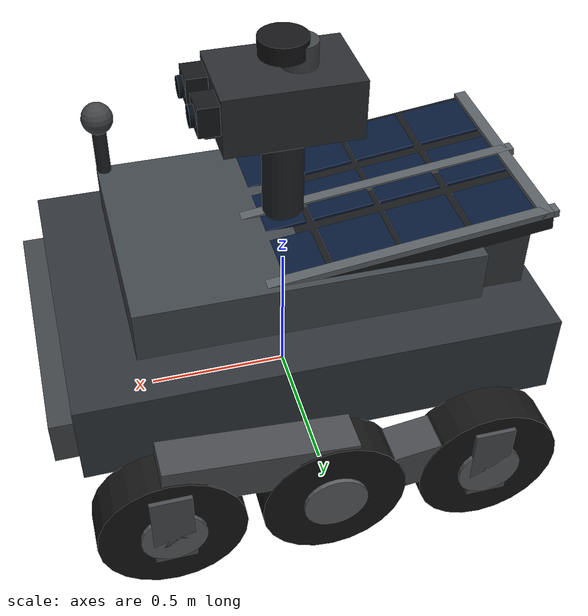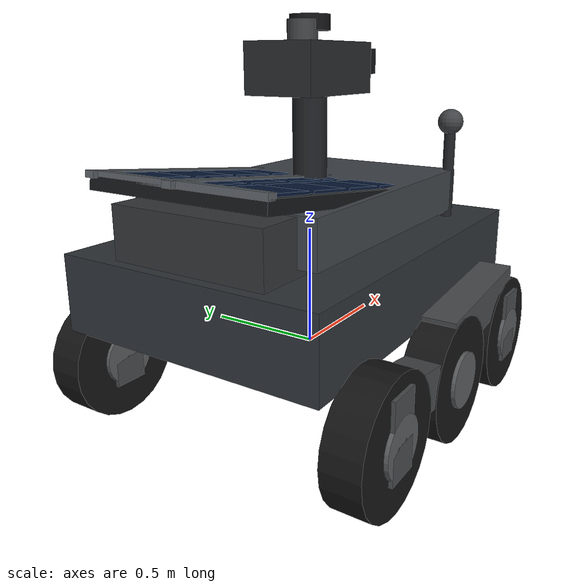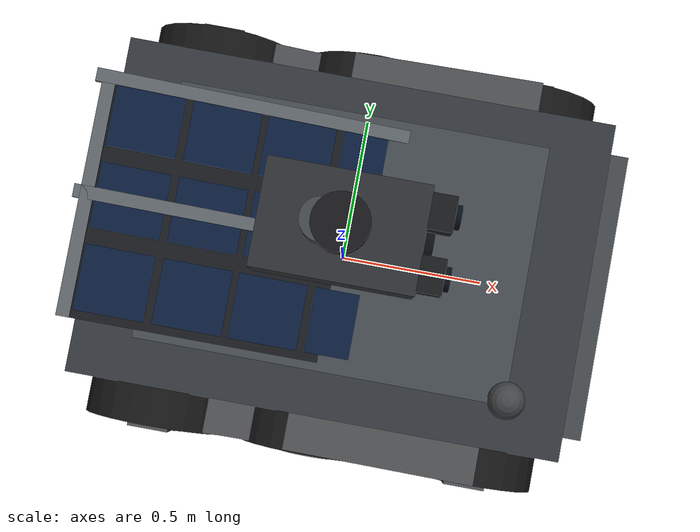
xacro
<?xml version="1.0"?>

<robot name="mars_rover"
       xmlns:xacro="http://www.ros.org/wiki/xacro">

    <xacro:include filename="chassis.xacro"/>
    <xacro:include filename="wheels.xacro"/>
    <xacro:include filename="sensors.xacro"/>
    <xacro:include filename="solar_panel.xacro"/>
    <xacro:include filename="details.xacro"/>

    <!-- Simulated wheel hardware interface -->
    <ros2_control name="RoverDriveSystem" type="system">
        <hardware>
            <plugin>gz_ros2_control/GazeboSimSystem</plugin>
        </hardware>

        <joint name="front_left_wheel_joint">
            <command_interface name="velocity"/>
            <state_interface name="position"/>
            <state_interface name="velocity"/>
        </joint>

        <joint name="middle_left_wheel_joint">
            <command_interface name="velocity"/>
            <state_interface name="position"/>
            <state_interface name="velocity"/>
        </joint>

        <joint name="rear_left_wheel_joint">
            <command_interface name="velocity"/>
            <state_interface name="position"/>
            <state_interface name="velocity"/>
        </joint>

        <joint name="front_right_wheel_joint">
            <command_interface name="velocity"/>
            <state_interface name="position"/>
            <state_interface name="velocity"/>
        </joint>

        <joint name="middle_right_wheel_joint">
            <command_interface name="velocity"/>
            <state_interface name="position"/>
            <state_interface name="velocity"/>
        </joint>

        <joint name="rear_right_wheel_joint">
            <command_interface name="velocity"/>
            <state_interface name="position"/>
            <state_interface name="velocity"/>
        </joint>
    </ros2_control>

    <!-- Gazebo ROS 2 control plugin -->
    <gazebo>
        <plugin filename="gz_ros2_control-system"
                name="gz_ros2_control::GazeboSimROS2ControlPlugin">
            <parameters>$(find rover_gazebo)/config/controllers.yaml</parameters>
        </plugin>
    </gazebo>

</robot>

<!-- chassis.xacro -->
<robot xmlns:xacro="http://www.ros.org/wiki/xacro">

    <!-- Main chassis dimensions -->
    <xacro:property name="chassis_length" value="1.6"/>
    <xacro:property name="chassis_width" value="1.1"/>
    <xacro:property name="chassis_height" value="0.30"/>
    <xacro:property name="chassis_z" value="0.35"/>
    <xacro:property name="chassis_mass" value="20.0"/>

    <!-- Main body -->
    <link name="base_link">

        <visual>
            <origin xyz="0 0 ${chassis_z}"/>
            <geometry>
                <box size="${chassis_length} ${chassis_width} ${chassis_height}"/>
            </geometry>

            <material name="chassis_material">
                <color rgba="0.18 0.20 0.22 1"/>
            </material>
        </visual>

        <collision>
            <origin xyz="0 0 ${chassis_z}"/>
            <geometry>
                <box size="${chassis_length} ${chassis_width} ${chassis_height}"/>
            </geometry>
        </collision>

        <inertial>
            <origin xyz="0 0 ${chassis_z}"/>
            <mass value="${chassis_mass}"/>

            <inertia
                ixx="2.167"
                ixy="0.0"
                ixz="0.0"
                iyy="4.417"
                iyz="0.0"
                izz="6.283"/>
        </inertial>

    </link>

    <!-- Raised central equipment deck -->
    <link name="equipment_deck">

        <visual>
            <origin xyz="0 0 0.12"/>
            <geometry>
                <box size="1.15 0.80 0.18"/>
            </geometry>

            <material name="deck_material">
                <color rgba="0.25 0.27 0.29 1"/>
            </material>
        </visual>

        <collision>
            <origin xyz="0 0 0.12"/>
            <geometry>
                <box size="1.15 0.80 0.18"/>
            </geometry>
        </collision>

        <inertial>
            <origin xyz="0 0 0.12"/>
            <mass value="4.0"/>

            <inertia
                ixx="0.2"
                ixy="0.0"
                ixz="0.0"
                iyy="0.2"
                iyz="0.0"
                izz="0.2"/>
        </inertial>

    </link>

    <joint name="equipment_deck_joint" type="fixed">

        <parent link="base_link"/>
        <child link="equipment_deck"/>

        <origin xyz="0 0 ${chassis_z + chassis_height/2}"/>

    </joint>

</robot>

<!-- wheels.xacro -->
<robot xmlns:xacro="http://www.ros.org/wiki/xacro">

    <!-- WHEEL PROPERTIES                                  -->

    <xacro:property name="wheel_radius" value="0.25"/>
    <xacro:property name="wheel_width" value="0.15"/>
    <xacro:property name="wheel_mass" value="2.0"/>

    <!-- WHEEL MACRO                                       -->

    <xacro:macro name="wheel" params="name x y">

        <link name="${name}">

            <!-- Tire -->
            <visual>

                <origin rpy="1.5708 0 0"/>

                <geometry>
                    <cylinder
                        radius="${wheel_radius}"
                        length="${wheel_width}"/>
                </geometry>

                <material name="wheel_material">
                    <color rgba="0.08 0.08 0.08 1"/>
                </material>

            </visual>

            <!-- Tire collision -->
            <collision>

                <origin rpy="1.5708 0 0"/>

                <geometry>
                    <cylinder
                        radius="${wheel_radius}"
                        length="${wheel_width}"/>
                </geometry>

            </collision>

            <!-- Wheel mass -->
            <inertial>

                <mass value="${wheel_mass}"/>

                <inertia
                    ixx="0.035"
                    ixy="0.0"
                    ixz="0.0"
                    iyy="0.0625"
                    iyz="0.0"
                    izz="0.035"/>

            </inertial>

        </link>

        <!-- Wheel axle -->
        <joint
            name="${name}_joint"
            type="continuous">

            <parent link="base_link"/>
            <child link="${name}"/>

            <origin
                xyz="${x} ${y} 0"
                rpy="0 0 0"/>

            <axis xyz="0 1 0"/>

        </joint>

    </xacro:macro>

    <!-- SIX WHEELS                                        -->

    <!-- LEFT -->
    <xacro:wheel
        name="front_left_wheel"
        x="0.55"
        y="0.62"/>

    <xacro:wheel
        name="middle_left_wheel"
        x="0.0"
        y="0.62"/>

    <xacro:wheel
        name="rear_left_wheel"
        x="-0.55"
        y="0.62"/>

    <!-- RIGHT -->
    <xacro:wheel
        name="front_right_wheel"
        x="0.55"
        y="-0.62"/>

    <xacro:wheel
        name="middle_right_wheel"
        x="0.0"
        y="-0.62"/>

    <xacro:wheel
        name="rear_right_wheel"
        x="-0.55"
        y="-0.62"/>

    <!-- ROCKER-BOGIE VISUAL STRUCTURE                    -->

    <!-- LEFT ROCKER                                      -->

    <link name="left_rocker">

        <visual>

            <!-- Long arm running toward front wheel -->
            <origin
                xyz="0.25 0 0.02"
                rpy="0 -0.08 0"/>

            <geometry>
                <box size="0.65 0.14 0.16"/>
            </geometry>

            <material name="suspension_material">
                <color rgba="0.28 0.29 0.30 1"/>
            </material>

        </visual>

    </link>

    <joint name="left_rocker_joint" type="fixed">

        <parent link="base_link"/>
        <child link="left_rocker"/>

        <origin
            xyz="0 0.62 0.18"
            rpy="0 0 0"/>

    </joint>

    <!-- RIGHT ROCKER                                     -->

    <link name="right_rocker">

        <visual>

            <origin
                xyz="0.25 0 0.02"
                rpy="0 -0.08 0"/>

            <geometry>
                <box size="0.65 0.14 0.16"/>
            </geometry>

            <material name="suspension_material"/>

        </visual>

    </link>

    <joint name="right_rocker_joint" type="fixed">

        <parent link="base_link"/>
        <child link="right_rocker"/>

        <origin
            xyz="0 -0.62 0.18"
            rpy="0 0 0"/>

    </joint>

    <!-- LEFT BOGIE                                       -->

    <link name="left_bogie">

        <visual>

            <!-- Arm running from middle toward rear -->
            <origin
                xyz="-0.27 0 -0.05"
                rpy="0 0.15 0"/>

            <geometry>
                <box size="0.70 0.14 0.16"/>
            </geometry>

            <material name="suspension_material"/>

        </visual>

    </link>

    <joint name="left_bogie_joint" type="fixed">

        <parent link="base_link"/>
        <child link="left_bogie"/>

        <origin
            xyz="0 0.62 0.12"
            rpy="0 0 0"/>

    </joint>

    <!-- RIGHT BOGIE                                      -->

    <link name="right_bogie">

        <visual>

            <origin
                xyz="-0.27 0 -0.05"
                rpy="0 0.15 0"/>

            <geometry>
                <box size="0.70 0.14 0.16"/>
            </geometry>

            <material name="suspension_material"/>

        </visual>

    </link>

    <joint name="right_bogie_joint" type="fixed">

        <parent link="base_link"/>
        <child link="right_bogie"/>

        <origin
            xyz="0 -0.62 0.12"
            rpy="0 0 0"/>

    </joint>

    <!-- FRONT SUSPENSION MOUNTS                          -->

    <link name="front_left_mount">

        <visual>

            <origin xyz="0 0 0.02"/>

            <geometry>
                <box size="0.14 0.18 0.30"/>
            </geometry>

            <material name="suspension_material"/>

        </visual>

    </link>

    <joint name="front_left_mount_joint" type="fixed">

        <parent link="base_link"/>
        <child link="front_left_mount"/>

        <origin
            xyz="0.55 0.62 0.02"
            rpy="0 0 0"/>

    </joint>

    <link name="front_right_mount">

        <visual>

            <origin xyz="0 0 0.02"/>

            <geometry>
                <box size="0.14 0.18 0.30"/>
            </geometry>

            <material name="suspension_material"/>

        </visual>

    </link>

    <joint name="front_right_mount_joint" type="fixed">

        <parent link="base_link"/>
        <child link="front_right_mount"/>

        <origin
            xyz="0.55 -0.62 0.02"
            rpy="0 0 0"/>

    </joint>

    <!-- REAR SUSPENSION MOUNTS                           -->

    <link name="rear_left_mount">

        <visual>

            <origin xyz="0 0 0.02"/>

            <geometry>
                <box size="0.14 0.18 0.30"/>
            </geometry>

            <material name="suspension_material"/>

        </visual>

    </link>

    <joint name="rear_left_mount_joint" type="fixed">

        <parent link="base_link"/>
        <child link="rear_left_mount"/>

        <origin
            xyz="-0.55 0.62 0.02"
            rpy="0 0 0"/>

    </joint>

    <link name="rear_right_mount">

        <visual>

            <origin xyz="0 0 0.02"/>

            <geometry>
                <box size="0.14 0.18 0.30"/>
            </geometry>

            <material name="suspension_material"/>

        </visual>

    </link>

    <joint name="rear_right_mount_joint" type="fixed">

        <parent link="base_link"/>
        <child link="rear_right_mount"/>

        <origin
            xyz="-0.55 -0.62 0.02"
            rpy="0 0 0"/>

    </joint>

    <!-- WHEEL HUBS                                       -->

    <xacro:macro name="wheel_hub" params="name x y">

        <link name="${name}_hub">

            <visual>

                <origin rpy="1.5708 0 0"/>

                <geometry>
                    <cylinder
                        radius="0.11"
                        length="0.18"/>
                </geometry>

                <material name="hub_material">
                    <color rgba="0.35 0.36 0.37 1"/>
                </material>

            </visual>

        </link>

        <joint name="${name}_hub_joint" type="fixed">

            <parent link="base_link"/>
            <child link="${name}_hub"/>

            <origin
                xyz="${x} ${y} 0"
                rpy="0 0 0"/>

        </joint>

    </xacro:macro>

    <!-- Hubs -->
    <xacro:wheel_hub name="front_left_wheel" x="0.55" y="0.62"/>
    <xacro:wheel_hub name="middle_left_wheel" x="0.0" y="0.62"/>
    <xacro:wheel_hub name="rear_left_wheel" x="-0.55" y="0.62"/>

    <xacro:wheel_hub name="front_right_wheel" x="0.55" y="-0.62"/>
    <xacro:wheel_hub name="middle_right_wheel" x="0.0" y="-0.62"/>
    <xacro:wheel_hub name="rear_right_wheel" x="-0.55" y="-0.62"/>

</robot>

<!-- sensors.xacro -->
<robot xmlns:xacro="http://www.ros.org/wiki/xacro">

    <!-- SENSOR PROPERTIES                                 -->

    <xacro:property name="mast_mass" value="1.0"/>
    <xacro:property name="head_mass" value="1.5"/>

    <!-- SENSOR MAST                                       -->

    <link name="sensor_mast">

        <visual>

            <origin xyz="0 0 0.30"/>

            <geometry>
                <cylinder
                    radius="0.07"
                    length="0.60"/>
            </geometry>

            <material name="mast_material">
                <color rgba="0.12 0.13 0.14 1"/>
            </material>

        </visual>

        <collision>

            <origin xyz="0 0 0.30"/>

            <geometry>
                <cylinder
                    radius="0.07"
                    length="0.60"/>
            </geometry>

        </collision>

        <inertial>

            <origin xyz="0 0 0.30"/>

            <mass value="${mast_mass}"/>

            <inertia
                ixx="0.02"
                ixy="0.0"
                ixz="0.0"
                iyy="0.02"
                iyz="0.0"
                izz="0.02"/>

        </inertial>

    </link>

    <joint name="sensor_mast_joint" type="fixed">

        <parent link="base_link"/>
        <child link="sensor_mast"/>

        <origin
            xyz="0 0 0.50"
            rpy="0 0 0"/>

    </joint>

    <!-- MAIN SENSOR HEAD                                  -->

    <link name="sensor_head">

        <visual>

            <geometry>
                <box size="0.45 0.30 0.20"/>
            </geometry>

            <material name="sensor_head_material">
                <color rgba="0.16 0.17 0.18 1"/>
            </material>

        </visual>

        <collision>

            <geometry>
                <box size="0.45 0.30 0.20"/>
            </geometry>

        </collision>

        <inertial>

            <mass value="${head_mass}"/>

            <inertia
                ixx="0.03"
                ixy="0.0"
                ixz="0.0"
                iyy="0.03"
                iyz="0.0"
                izz="0.03"/>

        </inertial>

    </link>

    <joint name="sensor_head_joint" type="fixed">

        <parent link="sensor_mast"/>
        <child link="sensor_head"/>

        <origin
            xyz="0 0 0.65"
            rpy="0 0 0"/>

    </joint>

    <!-- LEFT CAMERA HOUSING                               -->

    <link name="left_camera">

        <visual>

            <origin xyz="0 0 0"/>

            <geometry>
                <box size="0.12 0.10 0.10"/>
            </geometry>

            <material name="camera_housing_material">
                <color rgba="0.08 0.09 0.10 1"/>
            </material>

        </visual>

    </link>

    <joint name="left_camera_joint" type="fixed">

        <parent link="sensor_head"/>
        <child link="left_camera"/>

        <origin
            xyz="0.235 0.085 0.025"
            rpy="0 0 0"/>

    </joint>

    <!-- Left camera lens -->

    <link name="left_camera_lens">

        <visual>

            <origin xyz="0 0 0"/>

            <geometry>
                <cylinder
                    radius="0.035"
                    length="0.025"/>
            </geometry>

            <material name="lens_material">
                <color rgba="0.02 0.05 0.08 1"/>
            </material>

        </visual>

    </link>

    <joint name="left_camera_lens_joint" type="fixed">

        <parent link="left_camera"/>
        <child link="left_camera_lens"/>

        <origin
            xyz="0.065 0 0"
            rpy="0 1.5708 0"/>

    </joint>

    <!-- RIGHT CAMERA HOUSING                              -->

    <link name="right_camera">

        <visual>

            <geometry>
                <box size="0.12 0.10 0.10"/>
            </geometry>

            <material name="camera_housing_material"/>

        </visual>

    </link>

    <joint name="right_camera_joint" type="fixed">

        <parent link="sensor_head"/>
        <child link="right_camera"/>

        <origin
            xyz="0.235 -0.085 0.025"
            rpy="0 0 0"/>

    </joint>

    <!-- Right camera lens -->

    <link name="right_camera_lens">

        <visual>

            <geometry>
                <cylinder
                    radius="0.035"
                    length="0.025"/>
            </geometry>

            <material name="lens_material"/>

        </visual>

    </link>

    <joint name="right_camera_lens_joint" type="fixed">

        <parent link="right_camera"/>
        <child link="right_camera_lens"/>

        <origin
            xyz="0.065 0 0"
            rpy="0 1.5708 0"/>

    </joint>

    <!-- CENTRAL RANGE SENSOR                               -->

    <link name="range_sensor">

        <visual>

            <origin xyz="0 0 0"/>

            <geometry>
                <cylinder
                    radius="0.055"
                    length="0.04"/>
            </geometry>

            <material name="range_sensor_material">
                <color rgba="0.03 0.04 0.05 1"/>
            </material>

        </visual>

    </link>

    <joint name="range_sensor_joint" type="fixed">

        <parent link="sensor_head"/>
        <child link="range_sensor"/>

        <origin
            xyz="0.235 0 -0.055"
            rpy="0 1.5708 0"/>

    </joint>

    <!-- TOP SENSOR                                         -->

    <link name="top_sensor">

        <visual>

            <geometry>
                <cylinder
                    radius="0.06"
                    length="0.08"/>
            </geometry>

            <material name="top_sensor_material">
                <color rgba="0.25 0.26 0.27 1"/>
            </material>

        </visual>

    </link>

    <joint name="top_sensor_joint" type="fixed">

        <parent link="sensor_head"/>
        <child link="top_sensor"/>

        <origin
            xyz="-0.05 0 0.14"
            rpy="0 0 0"/>

    </joint>

    <!-- 3D LIDAR SENSOR                                   -->

    <link name="lidar_link">

        <visual>
            <geometry>
                <cylinder radius="0.08" length="0.06"/>
            </geometry>

            <material name="lidar_material">
                <color rgba="0.08 0.08 0.09 1"/>
            </material>
        </visual>

        <collision>
            <geometry>
                <cylinder radius="0.08" length="0.06"/>
            </geometry>
        </collision>

        <inertial>
            <mass value="0.3"/>
            <inertia
                ixx="0.0005"
                ixy="0.0"
                ixz="0.0"
                iyy="0.0005"
                iyz="0.0"
                izz="0.0008"/>
        </inertial>

    </link>

    <joint name="lidar_joint" type="fixed">
        <parent link="sensor_head"/>
        <child link="lidar_link"/>
        <origin xyz="0 0 0.17" rpy="0 0 0"/>
    </joint>

    <gazebo reference="lidar_link">
        <sensor name="lidar_link" type="gpu_lidar">
            <pose>0 0 0 0 0 0</pose>
            <topic> /lidar/scan </topic>
            <update_rate>10</update_rate>

            <lidar>
                <scan>
                    <horizontal>
                        <samples>360</samples>
                        <resolution>1</resolution>
                        <min_angle>-3.14159</min_angle>
                        <max_angle>3.14159</max_angle>
                    </horizontal>
                    <vertical>
                        <samples>16</samples>
                        <resolution>1</resolution>
                        <min_angle>-0.2618</min_angle>
                        <max_angle>0.2618</max_angle>
                    </vertical>
                </scan>
                <range>
                    <min>0.1</min>
                    <max>20.0</max>
                    <resolution>0.01</resolution>
                </range>
            </lidar>
            <always_on>true</always_on>
            <visualize>true</visualize>
        </sensor>
    </gazebo>

</robot>

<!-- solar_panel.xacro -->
<robot xmlns:xacro="http://www.ros.org/wiki/xacro">

    <xacro:property name="panel_length" value="1.0"/>
    <xacro:property name="panel_width" value="0.75"/>
    <xacro:property name="panel_thickness" value="0.05"/>

    <!-- Main panel -->
    <link name="solar_panel">

        <!-- Panel backing -->
        <visual>
            <geometry>
                <box size="${panel_length} ${panel_width} ${panel_thickness}"/>
            </geometry>

            <material name="panel_backing">
                <color rgba="0.08 0.09 0.10 1"/>
            </material>
        </visual>

        <!-- Outer frame -->
        <visual>
            <origin xyz="0 0 0.031"/>
            <geometry>
                <box size="1.04 0.04 0.025"/>
            </geometry>

            <material name="panel_frame">
                <color rgba="0.35 0.37 0.39 1"/>
            </material>
        </visual>

        <visual>
            <origin xyz="0 0.355 0.031"/>
            <geometry>
                <box size="1.04 0.04 0.025"/>
            </geometry>

            <material name="panel_frame"/>
        </visual>

        <visual>
            <origin xyz="-0.48 0 0.031"/>
            <geometry>
                <box size="0.04 0.75 0.025"/>
            </geometry>

            <material name="panel_frame"/>
        </visual>

        <visual>
            <origin xyz="0.48 0 0.031"/>
            <geometry>
                <box size="0.04 0.75 0.025"/>
            </geometry>

            <material name="panel_frame"/>
        </visual>

        <!-- Solar cells -->
        <xacro:macro name="solar_cell" params="x y">

            <visual>
                <origin xyz="${x} ${y} 0.030"/>
                <geometry>
                    <box size="0.21 0.20 0.012"/>
                </geometry>

                <material name="solar_cell_material">
                    <color rgba="0.03 0.10 0.22 1"/>
                </material>
            </visual>

        </xacro:macro>

        <!-- 4 x 3 cell array -->
        <xacro:solar_cell x="-0.35" y="-0.25"/>
        <xacro:solar_cell x="-0.115" y="-0.25"/>
        <xacro:solar_cell x="0.115" y="-0.25"/>
        <xacro:solar_cell x="0.35" y="-0.25"/>

        <xacro:solar_cell x="-0.35" y="0"/>
        <xacro:solar_cell x="-0.115" y="0"/>
        <xacro:solar_cell x="0.115" y="0"/>
        <xacro:solar_cell x="0.35" y="0"/>

        <xacro:solar_cell x="-0.35" y="0.25"/>
        <xacro:solar_cell x="-0.115" y="0.25"/>
        <xacro:solar_cell x="0.115" y="0.25"/>
        <xacro:solar_cell x="0.35" y="0.25"/>

        <!-- Single collision for the entire panel -->
        <collision>
            <geometry>
                <box size="${panel_length} ${panel_width} ${panel_thickness}"/>
            </geometry>
        </collision>

        <inertial>
            <mass value="1.5"/>
            <inertia
                ixx="0.1"
                ixy="0.0"
                ixz="0.0"
                iyy="0.1"
                iyz="0.0"
                izz="0.1"/>
        </inertial>

    </link>

    <joint name="solar_panel_joint" type="fixed">

        <parent link="base_link"/>
        <child link="solar_panel"/>

        <origin
            xyz="-0.30 0 0.72"
            rpy="0 0.12 0"/>

    </joint>

</robot>

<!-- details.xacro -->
<robot xmlns:xacro="http://www.ros.org/wiki/xacro">

    <!-- REAR EQUIPMENT BOX                               -->

    <link name="rear_equipment_box">

        <visual>
            <geometry>
                <box size="0.55 0.65 0.25"/>
            </geometry>

            <material name="equipment_material">
                <color rgba="0.20 0.21 0.22 1"/>
            </material>
        </visual>

        <collision>
            <geometry>
                <box size="0.55 0.65 0.25"/>
            </geometry>
        </collision>

        <inertial>
            <mass value="2.0"/>
            <inertia
                ixx="0.1"
                ixy="0"
                ixz="0"
                iyy="0.1"
                iyz="0"
                izz="0.1"/>
        </inertial>

    </link>

    <joint name="rear_equipment_box_joint" type="fixed">

        <parent link="base_link"/>
        <child link="rear_equipment_box"/>

        <origin xyz="-0.48 0 0.58"/>

    </joint>

    <!-- ANTENNA MAST                                     -->

    <link name="antenna">

        <visual>
            <origin xyz="0 0 0.20"/>
            <geometry>
                <cylinder radius="0.025" length="0.40"/>
            </geometry>

            <material name="antenna_material">
                <color rgba="0.12 0.13 0.14 1"/>
            </material>
        </visual>

    </link>

    <joint name="antenna_joint" type="fixed">

        <parent link="base_link"/>
        <child link="antenna"/>

        <origin xyz="0.55 -0.38 0.50"/>

    </joint>

    <!-- ANTENNA TIP                                      -->

    <link name="antenna_tip">

        <visual>
            <geometry>
                <sphere radius="0.055"/>
            </geometry>

            <material name="antenna_tip_material">
                <color rgba="0.25 0.26 0.27 1"/>
            </material>
        </visual>

    </link>

    <joint name="antenna_tip_joint" type="fixed">

        <parent link="antenna"/>
        <child link="antenna_tip"/>

        <origin xyz="0 0 0.42"/>

    </joint>

    <!-- FRONT PROTECTION BAR                              -->

    <link name="front_bumper">

        <visual>
            <geometry>
                <box size="0.10 0.95 0.16"/>
            </geometry>

            <material name="bumper_material">
                <color rgba="0.25 0.26 0.27 1"/>
            </material>
        </visual>

        <collision>
            <geometry>
                <box size="0.10 0.95 0.16"/>
            </geometry>
        </collision>

    </link>

    <joint name="front_bumper_joint" type="fixed">

        <parent link="base_link"/>
        <child link="front_bumper"/>

        <origin xyz="0.83 0 0.30"/>

    </joint>

</robot>
